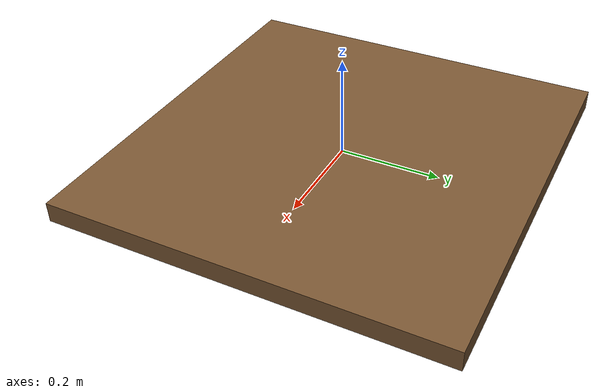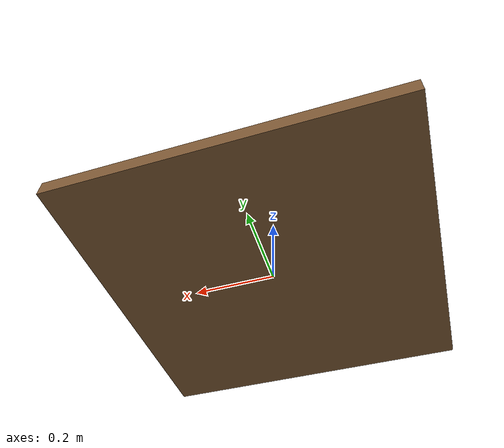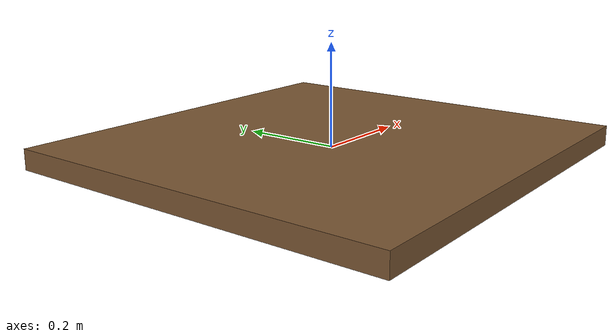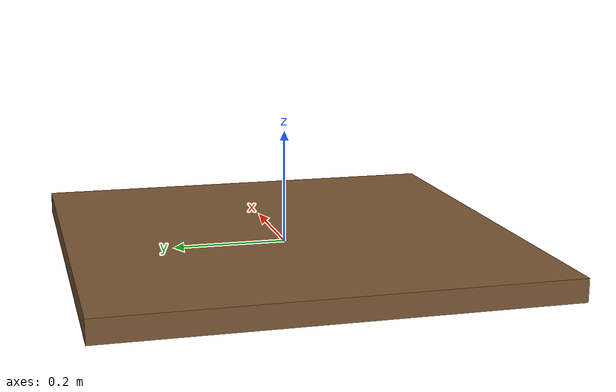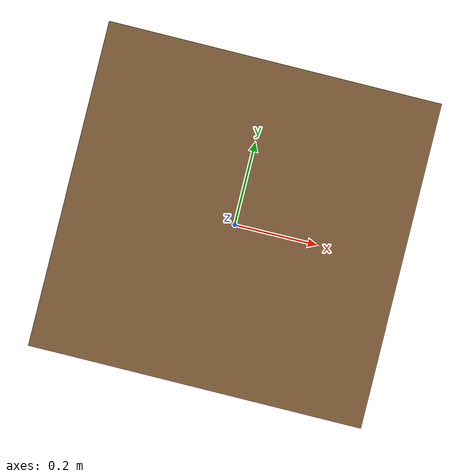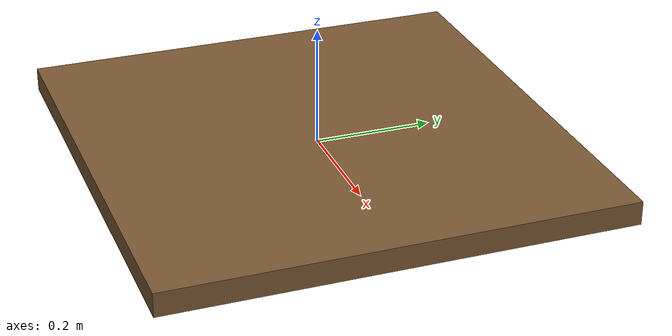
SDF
<?xml version="1.0"?>
<sdf version="1.6"><model name="work_table"><static>true</static><link name="link">
  <collision name="collision"><geometry><box><size>0.80 0.78 0.04</size></box></geometry></collision>
  <visual name="visual"><geometry><box><size>0.80 0.78 0.04</size></box></geometry>
    <material><ambient>0.34 0.25 0.16 1</ambient><diffuse>0.48 0.34 0.20 1</diffuse></material>
  </visual>
</link></model></sdf>
